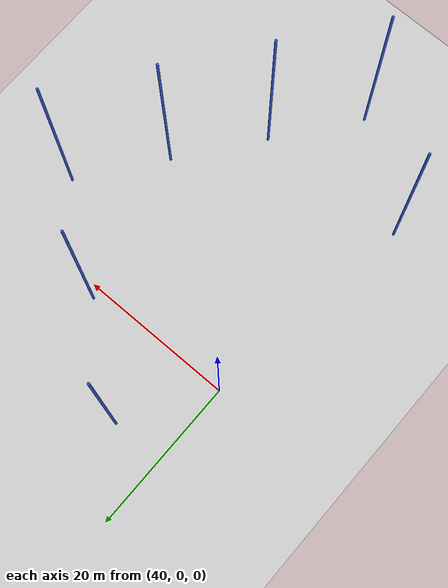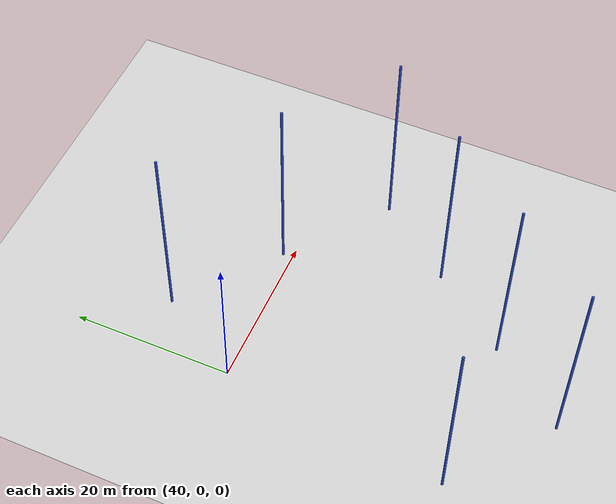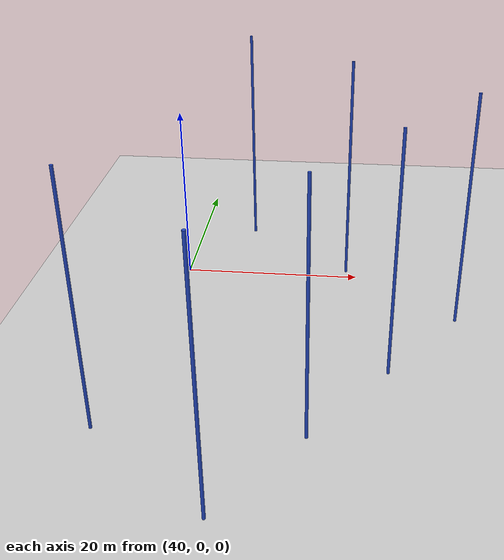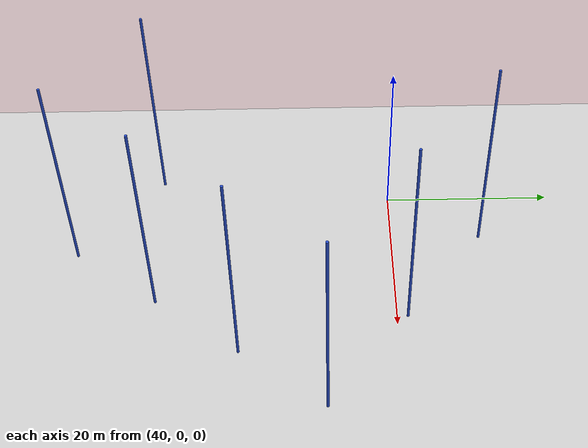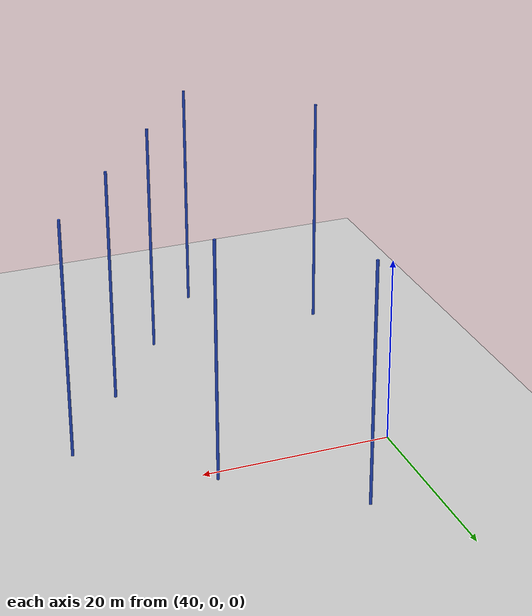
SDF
<sdf version="1.7">
 <world name="default">
  <model name="ground_plane">
   <pose>33 0 0 0 -0 0</pose>
   <static>1</static>
   <link name="link">
    <collision name="collision">
     <geometry><plane><normal>0 0 1</normal><size>100 100</size></plane></geometry>
     <surface>
      <contact><collide_bitmask>65535</collide_bitmask></contact>
      <friction><ode><mu>100</mu><mu2>50</mu2></ode></friction>
     </surface>
    </collision>
    <visual name="visual">
     <cast_shadows>0</cast_shadows>
     <geometry><plane><normal>0 0 1</normal><size>100 100</size></plane></geometry>
     <material>
      <script><uri>file://media/materials/scripts/gazebo.material</uri><name>Gazebo/Grey</name></script>
     </material>
    </visual>
   </link>
  </model>
  <model name="v3_SOAR_POLE_0">
   <link name="link">
    <inertial>
     <mass>1</mass>
     <inertia><ixx>0</ixx><ixy>0</ixy><ixz>0</ixz><iyy>0</iyy><iyz>0</iyz><izz>0</izz></inertia>
    </inertial>
    <visual name="visual">
     <geometry><cylinder><radius>0.152</radius><length>25.908</length></cylinder></geometry>
     <material>
      <script><name>Gazebo/Blue</name><uri>file://media/materials/scripts/gazebo.material</uri></script>
      <shader type="pixel"><normal_map>__default__</normal_map></shader>
      <ambient>0 0 1 1</ambient>
      <diffuse>0 0 1 1</diffuse>
      <specular>0.1 0.1 0.1 1</specular>
      <emissive>0 0 0 1</emissive>
     </material>
    </visual>
    <collision name="collision">
     <geometry><cylinder><radius>0.5</radius><length>1</length></cylinder></geometry>
     <surface>
      <friction>
       <ode><mu>1</mu><mu2>1</mu2><fdir1>0 0 0</fdir1><slip1>0</slip1><slip2>0</slip2></ode>
       <torsional>
        <coefficient>1</coefficient>
        <patch_radius>0</patch_radius>
        <surface_radius>0</surface_radius>
        <use_patch_radius>1</use_patch_radius>
        <ode><slip>0</slip></ode>
       </torsional>
      </friction>
      <bounce><restitution_coefficient>0</restitution_coefficient><threshold>1e+06</threshold></bounce>
      <contact>
       <collide_without_contact>0</collide_without_contact>
       <collide_without_contact_bitmask>1</collide_without_contact_bitmask>
       <collide_bitmask>1</collide_bitmask>
       <ode>
        <soft_cfm>0</soft_cfm>
        <soft_erp>0.2</soft_erp>
        <kp>1e+13</kp>
        <kd>1</kd>
        <max_vel>0.01</max_vel>
        <min_depth>0</min_depth>
       </ode>
       <bullet>
        <split_impulse>1</split_impulse>
        <split_impulse_penetration_threshold>-0.01</split_impulse_penetration_threshold>
        <soft_cfm>0</soft_cfm>
        <soft_erp>0.2</soft_erp>
        <kp>1e+13</kp>
        <kd>1</kd>
       </bullet>
      </contact>
     </surface>
    </collision>
   </link>
   <static>1</static>
   <pose>48.6492 -37.9114 13 0 -0 0</pose>
  </model>
  <model name="v3_SOAR_POLE_1">
   <link name="link">
    <inertial>
     <mass>1</mass>
     <inertia><ixx>0</ixx><ixy>0</ixy><ixz>0</ixz><iyy>0</iyy><iyz>0</iyz><izz>0</izz></inertia>
    </inertial>
    <visual name="visual">
     <geometry><cylinder><radius>0.152</radius><length>25.908</length></cylinder></geometry>
     <material>
      <script><name>Gazebo/Blue</name><uri>file://media/materials/scripts/gazebo.material</uri></script>
      <shader type="pixel"><normal_map>__default__</normal_map></shader>
      <ambient>0 0 1 1</ambient>
      <diffuse>0 0 1 1</diffuse>
      <specular>0.1 0.1 0.1 1</specular>
      <emissive>0 0 0 1</emissive>
     </material>
    </visual>
    <collision name="collision">
     <geometry><cylinder><radius>0.5</radius><length>1</length></cylinder></geometry>
     <surface>
      <friction>
       <ode><mu>1</mu><mu2>1</mu2><fdir1>0 0 0</fdir1><slip1>0</slip1><slip2>0</slip2></ode>
       <torsional>
        <coefficient>1</coefficient>
        <patch_radius>0</patch_radius>
        <surface_radius>0</surface_radius>
        <use_patch_radius>1</use_patch_radius>
        <ode><slip>0</slip></ode>
       </torsional>
      </friction>
      <bounce><restitution_coefficient>0</restitution_coefficient><threshold>1e+06</threshold></bounce>
      <contact>
       <collide_without_contact>0</collide_without_contact>
       <collide_without_contact_bitmask>1</collide_without_contact_bitmask>
       <collide_bitmask>1</collide_bitmask>
       <ode>
        <soft_cfm>0</soft_cfm>
        <soft_erp>0.2</soft_erp>
        <kp>1e+13</kp>
        <kd>1</kd>
        <max_vel>0.01</max_vel>
        <min_depth>0</min_depth>
       </ode>
       <bullet>
        <split_impulse>1</split_impulse>
        <split_impulse_penetration_threshold>-0.01</split_impulse_penetration_threshold>
        <soft_cfm>0</soft_cfm>
        <soft_erp>0.2</soft_erp>
        <kp>1e+13</kp>
        <kd>1</kd>
       </bullet>
      </contact>
     </surface>
    </collision>
   </link>
   <static>1</static>
   <pose>56.0992 -28.0102 13 0 -0 0</pose>
  </model>
  <model name="v3_SOAR_POLE_2">
   <link name="link">
    <inertial>
     <mass>1</mass>
     <inertia><ixx>0</ixx><ixy>0</ixy><ixz>0</ixz><iyy>0</iyy><iyz>0</iyz><izz>0</izz></inertia>
    </inertial>
    <visual name="visual">
     <geometry><cylinder><radius>0.152</radius><length>25.908</length></cylinder></geometry>
     <material>
      <script><name>Gazebo/Blue</name><uri>file://media/materials/scripts/gazebo.material</uri></script>
      <shader type="pixel"><normal_map>__default__</normal_map></shader>
      <ambient>0 0 1 1</ambient>
      <diffuse>0 0 1 1</diffuse>
      <specular>0.1 0.1 0.1 1</specular>
      <emissive>0 0 0 1</emissive>
     </material>
    </visual>
    <collision name="collision">
     <geometry><cylinder><radius>0.5</radius><length>1</length></cylinder></geometry>
     <surface>
      <friction>
       <ode><mu>1</mu><mu2>1</mu2><fdir1>0 0 0</fdir1><slip1>0</slip1><slip2>0</slip2></ode>
       <torsional>
        <coefficient>1</coefficient>
        <patch_radius>0</patch_radius>
        <surface_radius>0</surface_radius>
        <use_patch_radius>1</use_patch_radius>
        <ode><slip>0</slip></ode>
       </torsional>
      </friction>
      <bounce><restitution_coefficient>0</restitution_coefficient><threshold>1e+06</threshold></bounce>
      <contact>
       <collide_without_contact>0</collide_without_contact>
       <collide_without_contact_bitmask>1</collide_without_contact_bitmask>
       <collide_bitmask>1</collide_bitmask>
       <ode>
        <soft_cfm>0</soft_cfm>
        <soft_erp>0.2</soft_erp>
        <kp>1e+13</kp>
        <kd>1</kd>
        <max_vel>0.01</max_vel>
        <min_depth>0</min_depth>
       </ode>
       <bullet>
        <split_impulse>1</split_impulse>
        <split_impulse_penetration_threshold>-0.01</split_impulse_penetration_threshold>
        <soft_cfm>0</soft_cfm>
        <soft_erp>0.2</soft_erp>
        <kp>1e+13</kp>
        <kd>1</kd>
       </bullet>
      </contact>
     </surface>
    </collision>
   </link>
   <static>1</static>
   <pose>63.55 -18.108 13 0 -0 0</pose>
  </model>
  <model name="v3_SOAR_POLE_3">
   <link name="link">
    <inertial>
     <mass>1</mass>
     <inertia><ixx>0</ixx><ixy>0</ixy><ixz>0</ixz><iyy>0</iyy><iyz>0</iyz><izz>0</izz></inertia>
    </inertial>
    <visual name="visual">
     <geometry><cylinder><radius>0.152</radius><length>25.908</length></cylinder></geometry>
     <material>
      <script><name>Gazebo/Blue</name><uri>file://media/materials/scripts/gazebo.material</uri></script>
      <shader type="pixel"><normal_map>__default__</normal_map></shader>
      <ambient>0 0 1 1</ambient>
      <diffuse>0 0 1 1</diffuse>
      <specular>0.1 0.1 0.1 1</specular>
      <emissive>0 0 0 1</emissive>
     </material>
    </visual>
    <collision name="collision">
     <geometry><cylinder><radius>0.5</radius><length>1</length></cylinder></geometry>
     <surface>
      <friction>
       <ode><mu>1</mu><mu2>1</mu2><fdir1>0 0 0</fdir1><slip1>0</slip1><slip2>0</slip2></ode>
       <torsional>
        <coefficient>1</coefficient>
        <patch_radius>0</patch_radius>
        <surface_radius>0</surface_radius>
        <use_patch_radius>1</use_patch_radius>
        <ode><slip>0</slip></ode>
       </torsional>
      </friction>
      <bounce><restitution_coefficient>0</restitution_coefficient><threshold>1e+06</threshold></bounce>
      <contact>
       <collide_without_contact>0</collide_without_contact>
       <collide_without_contact_bitmask>1</collide_without_contact_bitmask>
       <collide_bitmask>1</collide_bitmask>
       <ode>
        <soft_cfm>0</soft_cfm>
        <soft_erp>0.2</soft_erp>
        <kp>1e+13</kp>
        <kd>1</kd>
        <max_vel>0.01</max_vel>
        <min_depth>0</min_depth>
       </ode>
       <bullet>
        <split_impulse>1</split_impulse>
        <split_impulse_penetration_threshold>-0.01</split_impulse_penetration_threshold>
        <soft_cfm>0</soft_cfm>
        <soft_erp>0.2</soft_erp>
        <kp>1e+13</kp>
        <kd>1</kd>
       </bullet>
      </contact>
     </surface>
    </collision>
   </link>
   <static>1</static>
   <pose>71.008 -8.2068 13 0 -0 0</pose>
  </model>
  <model name="v3_SOAR_POLE_4">
   <link name="link">
    <inertial>
     <mass>1</mass>
     <inertia><ixx>0</ixx><ixy>0</ixy><ixz>0</ixz><iyy>0</iyy><iyz>0</iyz><izz>0</izz></inertia>
    </inertial>
    <visual name="visual">
     <geometry><cylinder><radius>0.152</radius><length>25.908</length></cylinder></geometry>
     <material>
      <script><name>Gazebo/Blue</name><uri>file://media/materials/scripts/gazebo.material</uri></script>
      <shader type="pixel"><normal_map>__default__</normal_map></shader>
      <ambient>0 0 1 1</ambient>
      <diffuse>0 0 1 1</diffuse>
      <specular>0.1 0.1 0.1 1</specular>
      <emissive>0 0 0 1</emissive>
     </material>
    </visual>
    <collision name="collision">
     <geometry><cylinder><radius>0.5</radius><length>1</length></cylinder></geometry>
     <surface>
      <friction>
       <ode><mu>1</mu><mu2>1</mu2><fdir1>0 0 0</fdir1><slip1>0</slip1><slip2>0</slip2></ode>
       <torsional>
        <coefficient>1</coefficient>
        <patch_radius>0</patch_radius>
        <surface_radius>0</surface_radius>
        <use_patch_radius>1</use_patch_radius>
        <ode><slip>0</slip></ode>
       </torsional>
      </friction>
      <bounce><restitution_coefficient>0</restitution_coefficient><threshold>1e+06</threshold></bounce>
      <contact>
       <collide_without_contact>0</collide_without_contact>
       <collide_without_contact_bitmask>1</collide_without_contact_bitmask>
       <collide_bitmask>1</collide_bitmask>
       <ode>
        <soft_cfm>0</soft_cfm>
        <soft_erp>0.2</soft_erp>
        <kp>1e+13</kp>
        <kd>1</kd>
        <max_vel>0.01</max_vel>
        <min_depth>0</min_depth>
       </ode>
       <bullet>
        <split_impulse>1</split_impulse>
        <split_impulse_penetration_threshold>-0.01</split_impulse_penetration_threshold>
        <soft_cfm>0</soft_cfm>
        <soft_erp>0.2</soft_erp>
        <kp>1e+13</kp>
        <kd>1</kd>
       </bullet>
      </contact>
     </surface>
    </collision>
   </link>
   <static>1</static>
   <pose>58.8393 1.2705 13 0 -0 0</pose>
  </model>
  <model name="v3_SOAR_POLE_5">
   <link name="link">
    <inertial>
     <mass>1</mass>
     <inertia><ixx>0</ixx><ixy>0</ixy><ixz>0</ixz><iyy>0</iyy><iyz>0</iyz><izz>0</izz></inertia>
    </inertial>
    <visual name="visual">
     <geometry><cylinder><radius>0.152</radius><length>25.908</length></cylinder></geometry>
     <material>
      <script><name>Gazebo/Blue</name><uri>file://media/materials/scripts/gazebo.material</uri></script>
      <shader type="pixel"><normal_map>__default__</normal_map></shader>
      <ambient>0 0 1 1</ambient>
      <diffuse>0 0 1 1</diffuse>
      <specular>0.1 0.1 0.1 1</specular>
      <emissive>0 0 0 1</emissive>
     </material>
    </visual>
    <collision name="collision">
     <geometry><cylinder><radius>0.5</radius><length>1</length></cylinder></geometry>
     <surface>
      <friction>
       <ode><mu>1</mu><mu2>1</mu2><fdir1>0 0 0</fdir1><slip1>0</slip1><slip2>0</slip2></ode>
       <torsional>
        <coefficient>1</coefficient>
        <patch_radius>0</patch_radius>
        <surface_radius>0</surface_radius>
        <use_patch_radius>1</use_patch_radius>
        <ode><slip>0</slip></ode>
       </torsional>
      </friction>
      <bounce><restitution_coefficient>0</restitution_coefficient><threshold>1e+06</threshold></bounce>
      <contact>
       <collide_without_contact>0</collide_without_contact>
       <collide_without_contact_bitmask>1</collide_without_contact_bitmask>
       <collide_bitmask>1</collide_bitmask>
       <ode>
        <soft_cfm>0</soft_cfm>
        <soft_erp>0.2</soft_erp>
        <kp>1e+13</kp>
        <kd>1</kd>
        <max_vel>0.01</max_vel>
        <min_depth>0</min_depth>
       </ode>
       <bullet>
        <split_impulse>1</split_impulse>
        <split_impulse_penetration_threshold>-0.01</split_impulse_penetration_threshold>
        <soft_cfm>0</soft_cfm>
        <soft_erp>0.2</soft_erp>
        <kp>1e+13</kp>
        <kd>1</kd>
       </bullet>
      </contact>
     </surface>
    </collision>
   </link>
   <static>1</static>
   <pose>46.677 10.7489 13 0 -0 0</pose>
  </model>
  <model name="v3_SOAR_POLE_13">
   <link name="link">
    <inertial>
     <mass>1</mass>
     <inertia><ixx>0</ixx><ixy>0</ixy><ixz>0</ixz><iyy>0</iyy><iyz>0</iyz><izz>0</izz></inertia>
    </inertial>
    <visual name="visual">
     <geometry><cylinder><radius>0.152</radius><length>25.908</length></cylinder></geometry>
     <material>
      <script><name>Gazebo/Blue</name><uri>file://media/materials/scripts/gazebo.material</uri></script>
      <shader type="pixel"><normal_map>__default__</normal_map></shader>
      <ambient>0 0 1 1</ambient>
      <diffuse>0 0 1 1</diffuse>
      <specular>0.1 0.1 0.1 1</specular>
      <emissive>0 0 0 1</emissive>
     </material>
    </visual>
    <collision name="collision">
     <geometry><cylinder><radius>0.5</radius><length>1</length></cylinder></geometry>
     <surface>
      <friction>
       <ode><mu>1</mu><mu2>1</mu2><fdir1>0 0 0</fdir1><slip1>0</slip1><slip2>0</slip2></ode>
       <torsional>
        <coefficient>1</coefficient>
        <patch_radius>0</patch_radius>
        <surface_radius>0</surface_radius>
        <use_patch_radius>1</use_patch_radius>
        <ode><slip>0</slip></ode>
       </torsional>
      </friction>
      <bounce><restitution_coefficient>0</restitution_coefficient><threshold>1e+06</threshold></bounce>
      <contact>
       <collide_without_contact>0</collide_without_contact>
       <collide_without_contact_bitmask>1</collide_without_contact_bitmask>
       <collide_bitmask>1</collide_bitmask>
       <ode>
        <soft_cfm>0</soft_cfm>
        <soft_erp>0.2</soft_erp>
        <kp>1e+13</kp>
        <kd>1</kd>
        <max_vel>0.01</max_vel>
        <min_depth>0</min_depth>
       </ode>
       <bullet>
        <split_impulse>1</split_impulse>
        <split_impulse_penetration_threshold>-0.01</split_impulse_penetration_threshold>
        <soft_cfm>0</soft_cfm>
        <soft_erp>0.2</soft_erp>
        <kp>1e+13</kp>
        <kd>1</kd>
       </bullet>
      </contact>
     </surface>
    </collision>
   </link>
   <static>1</static>
   <pose>36.4869 -28.4341 13 0 -0 0</pose>
  </model>
 </world>
</sdf>
